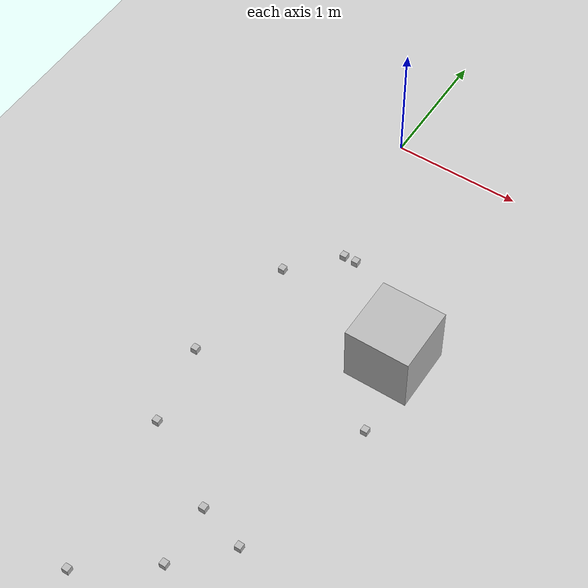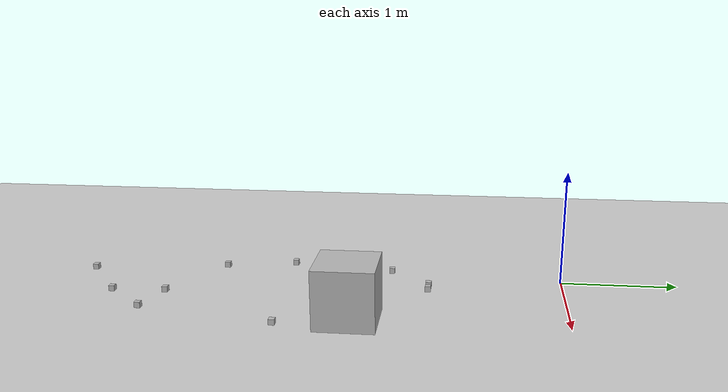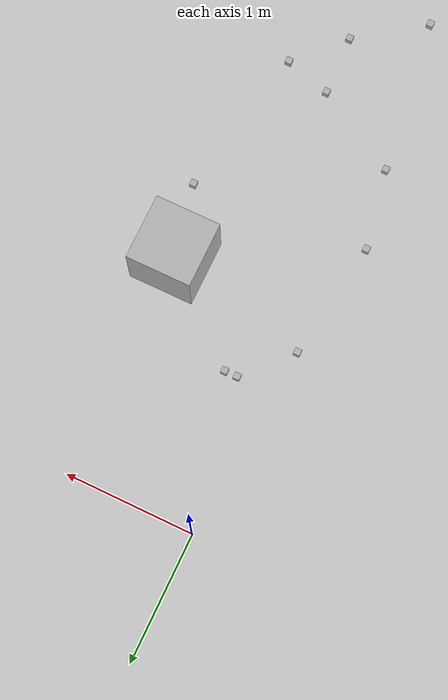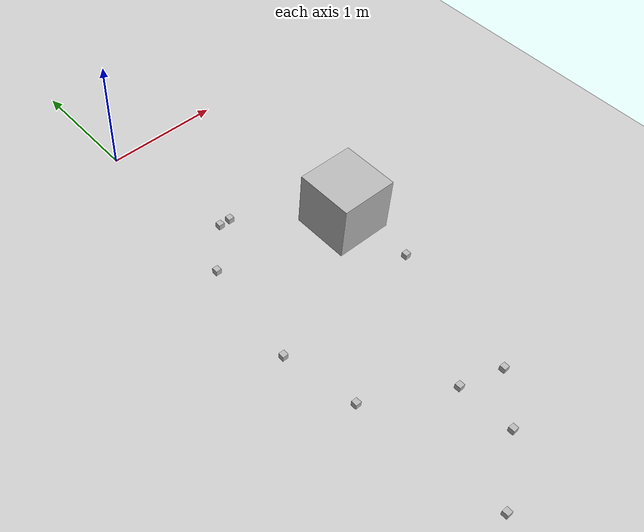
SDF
<sdf version="1.6">
 <world name="default">
  <model name="ground_plane">
   <static>1</static>
   <link name="link">
    <collision name="collision">
     <geometry><plane><normal>0 0 1</normal><size>100 100</size></plane></geometry>
     <surface><friction><ode><mu>100</mu><mu2>50</mu2></ode></friction></surface>
    </collision>
    <visual name="visual">
     <cast_shadows>0</cast_shadows>
     <geometry><plane><normal>0 0 1</normal><size>100 100</size></plane></geometry>
     <material>
      <script><uri>file://media/materials/scripts/gazebo.material</uri><name>Gazebo/Grey</name></script>
     </material>
    </visual>
   </link>
  </model>
  <model name="at72">
   <static>0</static>
   <link name="link">
    <inertial>
     <mass>0.01</mass>
     <inertia><ixx>4e-05</ixx><ixy>0</ixy><ixz>0</ixz><iyy>4e-05</iyy><iyz>0</iyz><izz>4e-05</izz></inertia>
    </inertial>
    <visual name="visual">
     <geometry><box><size>0.05 0.05 0.05</size></box></geometry>
     <material>
      <script>
       <uri>model://at0/materials/scripts</uri>
       <uri>model://at0/materials/textures</uri>
       <name>at0/Diffuse</name>
      </script>
     </material>
    </visual>
    <collision name="collision">
     <geometry><box><size>0.05 0.05 0.05</size></box></geometry>
     <surface><friction><ode><mu>0.8</mu><mu2>0.7</mu2></ode></friction></surface>
    </collision>
   </link>
   <pose>0.203426 -1.15984 0.025 0 -0 0</pose>
  </model>
  <model name="at73">
   <static>0</static>
   <link name="link">
    <inertial>
     <mass>0.01</mass>
     <inertia><ixx>4e-05</ixx><ixy>0</ixy><ixz>0</ixz><iyy>4e-05</iyy><iyz>0</iyz><izz>4e-05</izz></inertia>
    </inertial>
    <visual name="visual">
     <geometry><box><size>0.05 0.05 0.05</size></box></geometry>
     <material>
      <script>
       <uri>model://at0/materials/scripts</uri>
       <uri>model://at0/materials/textures</uri>
       <name>at0/Diffuse</name>
      </script>
     </material>
    </visual>
    <collision name="collision">
     <geometry><box><size>0.05 0.05 0.05</size></box></geometry>
     <surface><friction><ode><mu>0.8</mu><mu2>0.7</mu2></ode></friction></surface>
    </collision>
   </link>
   <pose>0.303426 -1.15984 0.025 0 -0 0</pose>
  </model>
  <model name="at100">
   <static>0</static>
   <link name="link">
    <inertial>
     <mass>0.01</mass>
     <inertia><ixx>4e-05</ixx><ixy>0</ixy><ixz>0</ixz><iyy>4e-05</iyy><iyz>0</iyz><izz>4e-05</izz></inertia>
    </inertial>
    <visual name="visual">
     <geometry><box><size>0.05 0.05 0.05</size></box></geometry>
     <material>
      <script>
       <uri>model://at0/materials/scripts</uri>
       <uri>model://at0/materials/textures</uri>
       <name>at0/Diffuse</name>
      </script>
     </material>
    </visual>
    <collision name="collision">
     <geometry><box><size>0.05 0.05 0.05</size></box></geometry>
     <surface><friction><ode><mu>0.8</mu><mu2>0.7</mu2></ode></friction></surface>
    </collision>
   </link>
   <pose>-0.116392 -3.05201 0.025 0 -0 0</pose>
  </model>
  <model name="at103">
   <static>0</static>
   <link name="link">
    <inertial>
     <mass>0.01</mass>
     <inertia><ixx>4e-05</ixx><ixy>0</ixy><ixz>0</ixz><iyy>4e-05</iyy><iyz>0</iyz><izz>4e-05</izz></inertia>
    </inertial>
    <visual name="visual">
     <geometry><box><size>0.05 0.05 0.05</size></box></geometry>
     <material>
      <script>
       <uri>model://at0/materials/scripts</uri>
       <uri>model://at0/materials/textures</uri>
       <name>at0/Diffuse</name>
      </script>
     </material>
    </visual>
    <collision name="collision">
     <geometry><box><size>0.05 0.05 0.05</size></box></geometry>
     <surface><friction><ode><mu>0.8</mu><mu2>0.7</mu2></ode></friction></surface>
    </collision>
   </link>
   <pose>0.057753 -4.25498 0.025 0 -0 0</pose>
  </model>
  <model name="at105">
   <static>0</static>
   <link name="link">
    <inertial>
     <mass>0.01</mass>
     <inertia><ixx>4e-05</ixx><ixy>0</ixy><ixz>0</ixz><iyy>4e-05</iyy><iyz>0</iyz><izz>4e-05</izz></inertia>
    </inertial>
    <visual name="visual">
     <geometry><box><size>0.05 0.05 0.05</size></box></geometry>
     <material>
      <script>
       <uri>model://at0/materials/scripts</uri>
       <uri>model://at0/materials/textures</uri>
       <name>at0/Diffuse</name>
      </script>
     </material>
    </visual>
    <collision name="collision">
     <geometry><box><size>0.05 0.05 0.05</size></box></geometry>
     <surface><friction><ode><mu>0.8</mu><mu2>0.7</mu2></ode></friction></surface>
    </collision>
   </link>
   <pose>-0.240705 -2.42922 0.025 0 -0 0</pose>
  </model>
  <model name="at106">
   <static>0</static>
   <link name="link">
    <inertial>
     <mass>0.01</mass>
     <inertia><ixx>4e-05</ixx><ixy>0</ixy><ixz>0</ixz><iyy>4e-05</iyy><iyz>0</iyz><izz>4e-05</izz></inertia>
    </inertial>
    <visual name="visual">
     <geometry><box><size>0.05 0.05 0.05</size></box></geometry>
     <material>
      <script>
       <uri>model://at0/materials/scripts</uri>
       <uri>model://at0/materials/textures</uri>
       <name>at0/Diffuse</name>
      </script>
     </material>
    </visual>
    <collision name="collision">
     <geometry><box><size>0.05 0.05 0.05</size></box></geometry>
     <surface><friction><ode><mu>0.8</mu><mu2>0.7</mu2></ode></friction></surface>
    </collision>
   </link>
   <pose>0.897943 -3.52376 0.025 0 -0 0</pose>
  </model>
  <model name="at117">
   <static>0</static>
   <link name="link">
    <inertial>
     <mass>0.01</mass>
     <inertia><ixx>4e-05</ixx><ixy>0</ixy><ixz>0</ixz><iyy>4e-05</iyy><iyz>0</iyz><izz>4e-05</izz></inertia>
    </inertial>
    <visual name="visual">
     <geometry><box><size>0.05 0.05 0.05</size></box></geometry>
     <material>
      <script>
       <uri>model://at0/materials/scripts</uri>
       <uri>model://at0/materials/textures</uri>
       <name>at0/Diffuse</name>
      </script>
     </material>
    </visual>
    <collision name="collision">
     <geometry><box><size>0.05 0.05 0.05</size></box></geometry>
     <surface><friction><ode><mu>0.8</mu><mu2>0.7</mu2></ode></friction></surface>
    </collision>
   </link>
   <pose>1.12314 -2.34224 0.025 0 -0 0</pose>
  </model>
  <model name="at118">
   <static>0</static>
   <link name="link">
    <inertial>
     <mass>0.01</mass>
     <inertia><ixx>4e-05</ixx><ixy>0</ixy><ixz>0</ixz><iyy>4e-05</iyy><iyz>0</iyz><izz>4e-05</izz></inertia>
    </inertial>
    <visual name="visual">
     <geometry><box><size>0.05 0.05 0.05</size></box></geometry>
     <material>
      <script>
       <uri>model://at0/materials/scripts</uri>
       <uri>model://at0/materials/textures</uri>
       <name>at0/Diffuse</name>
      </script>
     </material>
    </visual>
    <collision name="collision">
     <geometry><box><size>0.05 0.05 0.05</size></box></geometry>
     <surface><friction><ode><mu>0.8</mu><mu2>0.7</mu2></ode></friction></surface>
    </collision>
   </link>
   <pose>-0.112819 -1.50951 0.025 0 -0 0</pose>
  </model>
  <model name="at120">
   <static>0</static>
   <link name="link">
    <inertial>
     <mass>0.01</mass>
     <inertia><ixx>4e-05</ixx><ixy>0</ixy><ixz>0</ixz><iyy>4e-05</iyy><iyz>0</iyz><izz>4e-05</izz></inertia>
    </inertial>
    <visual name="visual">
     <geometry><box><size>0.05 0.05 0.05</size></box></geometry>
     <material>
      <script>
       <uri>model://at0/materials/scripts</uri>
       <uri>model://at0/materials/textures</uri>
       <name>at0/Diffuse</name>
      </script>
     </material>
    </visual>
    <collision name="collision">
     <geometry><box><size>0.05 0.05 0.05</size></box></geometry>
     <surface><friction><ode><mu>0.8</mu><mu2>0.7</mu2></ode></friction></surface>
    </collision>
   </link>
   <pose>0.561262 -3.88652 0.025 0 -0 0</pose>
  </model>
  <model name="at125">
   <static>0</static>
   <link name="link">
    <inertial>
     <mass>0.01</mass>
     <inertia><ixx>4e-05</ixx><ixy>0</ixy><ixz>0</ixz><iyy>4e-05</iyy><iyz>0</iyz><izz>4e-05</izz></inertia>
    </inertial>
    <visual name="visual">
     <geometry><box><size>0.05 0.05 0.05</size></box></geometry>
     <material>
      <script>
       <uri>model://at0/materials/scripts</uri>
       <uri>model://at0/materials/textures</uri>
       <name>at0/Diffuse</name>
      </script>
     </material>
    </visual>
    <collision name="collision">
     <geometry><box><size>0.05 0.05 0.05</size></box></geometry>
     <surface><friction><ode><mu>0.8</mu><mu2>0.7</mu2></ode></friction></surface>
    </collision>
   </link>
   <pose>0.539059 -3.42068 0.025 0 -0 0</pose>
  </model>
  <model name="box_0">
   <pose>0.990096 -1.76071 0.25 0 -0 0</pose>
   <static>1</static>
   <link name="link">
    <inertial>
     <mass>0.01</mass>
     <inertia><ixx>4e-05</ixx><ixy>0</ixy><ixz>0</ixz><iyy>4e-05</iyy><iyz>0</iyz><izz>4e-05</izz></inertia>
    </inertial>
    <visual name="visual">
     <geometry><box><size>0.5 0.5 0.5</size></box></geometry>
     <material>
      <script>
       <uri>model://box/materials/scripts</uri>
       <uri>model://box/materials/textures</uri>
       <name>box/Diffuse</name>
      </script>
     </material>
    </visual>
    <collision name="collision">
     <geometry><box><size>0.5 0.5 0.5</size></box></geometry>
     <surface><friction><ode><mu>0.8</mu><mu2>0.7</mu2></ode></friction></surface>
    </collision>
   </link>
  </model>
 </world>
</sdf>
